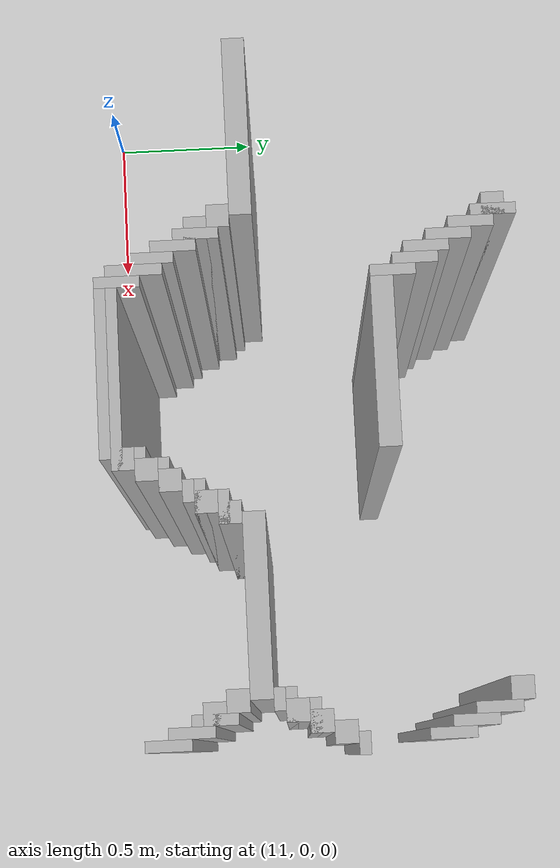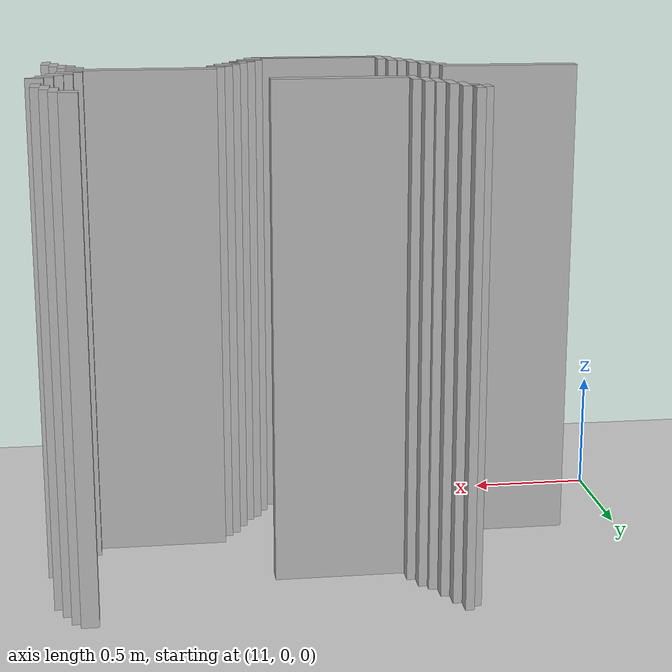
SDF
<sdf version="1.6">
 <world name="slam_world">
  <model name="ground_plane">
   <static>true</static>
   <link name="link">
    <collision name="collision">
     <geometry><plane><normal>0 0 1</normal><size>100 100</size></plane></geometry>
    </collision>
    <visual name="visual">
     <geometry><plane><normal>0 0 1</normal><size>100 100</size></plane></geometry>
     <material>
      <ambient>0.8 0.8 0.8 1</ambient>
      <diffuse>0.8 0.8 0.8 1</diffuse>
      <specular>0.8 0.8 0.8 1</specular>
     </material>
    </visual>
   </link>
  </model>
  <model name="wall_5342">
   <static>true</static>
   <pose>11.81554524361949 1.2529002320185614 1.0 0 0 0</pose>
   <link name="link">
    <collision name="collision">
     <geometry><box><size>0.03480278422273782 0.13921113689095127 2.0</size></box></geometry>
    </collision>
    <visual name="visual">
     <geometry><box><size>0.03480278422273782 0.13921113689095127 2.0</size></box></geometry>
     <material><ambient>0.5 0.5 0.5 1</ambient><diffuse>0.7 0.7 0.7 1</diffuse></material>
    </visual>
   </link>
  </model>
  <model name="wall_5352">
   <static>true</static>
   <pose>11.79814385150812 1.2529002320185614 1.0 0 0 0</pose>
   <link name="link">
    <collision name="collision">
     <geometry><box><size>0.06960556844547564 0.06960556844547564 2.0</size></box></geometry>
    </collision>
    <visual name="visual">
     <geometry><box><size>0.06960556844547564 0.06960556844547564 2.0</size></box></geometry>
     <material><ambient>0.5 0.5 0.5 1</ambient><diffuse>0.7 0.7 0.7 1</diffuse></material>
    </visual>
   </link>
  </model>
  <model name="wall_5353">
   <static>true</static>
   <pose>13.259860788863108 1.2529002320185614 1.0 0 0 0</pose>
   <link name="link">
    <collision name="collision">
     <geometry><box><size>0.06960556844547564 0.06960556844547564 2.0</size></box></geometry>
    </collision>
    <visual name="visual">
     <geometry><box><size>0.06960556844547564 0.06960556844547564 2.0</size></box></geometry>
     <material><ambient>0.5 0.5 0.5 1</ambient><diffuse>0.7 0.7 0.7 1</diffuse></material>
    </visual>
   </link>
  </model>
  <model name="wall_5363">
   <static>true</static>
   <pose>11.850348027842227 1.1832946635730859 1.0 0 0 0</pose>
   <link name="link">
    <collision name="collision">
     <geometry><box><size>0.03480278422273782 0.13921113689095127 2.0</size></box></geometry>
    </collision>
    <visual name="visual">
     <geometry><box><size>0.03480278422273782 0.13921113689095127 2.0</size></box></geometry>
     <material><ambient>0.5 0.5 0.5 1</ambient><diffuse>0.7 0.7 0.7 1</diffuse></material>
    </visual>
   </link>
  </model>
  <model name="wall_5364">
   <static>true</static>
   <pose>13.312064965197216 1.1832946635730859 1.0 0 0 0</pose>
   <link name="link">
    <collision name="collision">
     <geometry><box><size>0.03480278422273782 0.13921113689095127 2.0</size></box></geometry>
    </collision>
    <visual name="visual">
     <geometry><box><size>0.03480278422273782 0.13921113689095127 2.0</size></box></geometry>
     <material><ambient>0.5 0.5 0.5 1</ambient><diffuse>0.7 0.7 0.7 1</diffuse></material>
    </visual>
   </link>
  </model>
  <model name="wall_5382">
   <static>true</static>
   <pose>11.885150812064964 1.1136890951276102 1.0 0 0 0</pose>
   <link name="link">
    <collision name="collision">
     <geometry><box><size>0.03480278422273782 0.13921113689095127 2.0</size></box></geometry>
    </collision>
    <visual name="visual">
     <geometry><box><size>0.03480278422273782 0.13921113689095127 2.0</size></box></geometry>
     <material><ambient>0.5 0.5 0.5 1</ambient><diffuse>0.7 0.7 0.7 1</diffuse></material>
    </visual>
   </link>
  </model>
  <model name="wall_5383">
   <static>true</static>
   <pose>13.346867749419953 1.1136890951276102 1.0 0 0 0</pose>
   <link name="link">
    <collision name="collision">
     <geometry><box><size>0.03480278422273782 0.13921113689095127 2.0</size></box></geometry>
    </collision>
    <visual name="visual">
     <geometry><box><size>0.03480278422273782 0.13921113689095127 2.0</size></box></geometry>
     <material><ambient>0.5 0.5 0.5 1</ambient><diffuse>0.7 0.7 0.7 1</diffuse></material>
    </visual>
   </link>
  </model>
  <model name="wall_5393">
   <static>true</static>
   <pose>11.919953596287703 1.0440835266821344 1.0 0 0 0</pose>
   <link name="link">
    <collision name="collision">
     <geometry><box><size>0.03480278422273782 0.13921113689095127 2.0</size></box></geometry>
    </collision>
    <visual name="visual">
     <geometry><box><size>0.03480278422273782 0.13921113689095127 2.0</size></box></geometry>
     <material><ambient>0.5 0.5 0.5 1</ambient><diffuse>0.7 0.7 0.7 1</diffuse></material>
    </visual>
   </link>
  </model>
  <model name="wall_5394">
   <static>true</static>
   <pose>13.38167053364269 1.0440835266821344 1.0 0 0 0</pose>
   <link name="link">
    <collision name="collision">
     <geometry><box><size>0.03480278422273782 0.13921113689095127 2.0</size></box></geometry>
    </collision>
    <visual name="visual">
     <geometry><box><size>0.03480278422273782 0.13921113689095127 2.0</size></box></geometry>
     <material><ambient>0.5 0.5 0.5 1</ambient><diffuse>0.7 0.7 0.7 1</diffuse></material>
    </visual>
   </link>
  </model>
  <model name="wall_5404">
   <static>true</static>
   <pose>11.95475638051044 1.0092807424593968 1.0 0 0 0</pose>
   <link name="link">
    <collision name="collision">
     <geometry><box><size>0.03480278422273782 0.13921113689095127 2.0</size></box></geometry>
    </collision>
    <visual name="visual">
     <geometry><box><size>0.03480278422273782 0.13921113689095127 2.0</size></box></geometry>
     <material><ambient>0.5 0.5 0.5 1</ambient><diffuse>0.7 0.7 0.7 1</diffuse></material>
    </visual>
   </link>
  </model>
  <model name="wall_5420">
   <static>true</static>
   <pose>11.989559164733178 0.9396751740139211 1.0 0 0 0</pose>
   <link name="link">
    <collision name="collision">
     <geometry><box><size>0.03480278422273782 0.13921113689095127 2.0</size></box></geometry>
    </collision>
    <visual name="visual">
     <geometry><box><size>0.03480278422273782 0.13921113689095127 2.0</size></box></geometry>
     <material><ambient>0.5 0.5 0.5 1</ambient><diffuse>0.7 0.7 0.7 1</diffuse></material>
    </visual>
   </link>
  </model>
  <model name="wall_5440">
   <static>true</static>
   <pose>12.267981438515081 0.9048723897911832 1.0 0 0 0</pose>
   <link name="link">
    <collision name="collision">
     <geometry><box><size>0.5220417633410672 0.06960556844547564 2.0</size></box></geometry>
    </collision>
    <visual name="visual">
     <geometry><box><size>0.5220417633410672 0.06960556844547564 2.0</size></box></geometry>
     <material><ambient>0.5 0.5 0.5 1</ambient><diffuse>0.7 0.7 0.7 1</diffuse></material>
    </visual>
   </link>
  </model>
  <model name="wall_5478">
   <static>true</static>
   <pose>13.39907192575406 0.7830626450116009 1.0 0 0 0</pose>
   <link name="link">
    <collision name="collision">
     <geometry><box><size>0.06960556844547564 0.03480278422273782 2.0</size></box></geometry>
    </collision>
    <visual name="visual">
     <geometry><box><size>0.06960556844547564 0.03480278422273782 2.0</size></box></geometry>
     <material><ambient>0.5 0.5 0.5 1</ambient><diffuse>0.7 0.7 0.7 1</diffuse></material>
    </visual>
   </link>
  </model>
  <model name="wall_5488">
   <static>true</static>
   <pose>13.364269141531322 0.7308584686774942 1.0 0 0 0</pose>
   <link name="link">
    <collision name="collision">
     <geometry><box><size>0.06960556844547564 0.06960556844547564 2.0</size></box></geometry>
    </collision>
    <visual name="visual">
     <geometry><box><size>0.06960556844547564 0.06960556844547564 2.0</size></box></geometry>
     <material><ambient>0.5 0.5 0.5 1</ambient><diffuse>0.7 0.7 0.7 1</diffuse></material>
    </visual>
   </link>
  </model>
  <model name="wall_5498">
   <static>true</static>
   <pose>13.329466357308585 0.6612529002320185 1.0 0 0 0</pose>
   <link name="link">
    <collision name="collision">
     <geometry><box><size>0.06960556844547564 0.06960556844547564 2.0</size></box></geometry>
    </collision>
    <visual name="visual">
     <geometry><box><size>0.06960556844547564 0.06960556844547564 2.0</size></box></geometry>
     <material><ambient>0.5 0.5 0.5 1</ambient><diffuse>0.7 0.7 0.7 1</diffuse></material>
    </visual>
   </link>
  </model>
  <model name="wall_5508">
   <static>true</static>
   <pose>13.312064965197216 0.6438515081206496 1.0 0 0 0</pose>
   <link name="link">
    <collision name="collision">
     <geometry><box><size>0.10440835266821345 0.03480278422273782 2.0</size></box></geometry>
    </collision>
    <visual name="visual">
     <geometry><box><size>0.10440835266821345 0.03480278422273782 2.0</size></box></geometry>
     <material><ambient>0.5 0.5 0.5 1</ambient><diffuse>0.7 0.7 0.7 1</diffuse></material>
    </visual>
   </link>
  </model>
  <model name="wall_5514">
   <static>true</static>
   <pose>13.294663573085847 0.5916473317865429 1.0 0 0 0</pose>
   <link name="link">
    <collision name="collision">
     <geometry><box><size>0.06960556844547564 0.06960556844547564 2.0</size></box></geometry>
    </collision>
    <visual name="visual">
     <geometry><box><size>0.06960556844547564 0.06960556844547564 2.0</size></box></geometry>
     <material><ambient>0.5 0.5 0.5 1</ambient><diffuse>0.7 0.7 0.7 1</diffuse></material>
    </visual>
   </link>
  </model>
  <model name="wall_5524">
   <static>true</static>
   <pose>13.277262180974477 0.574245939675174 1.0 0 0 0</pose>
   <link name="link">
    <collision name="collision">
     <geometry><box><size>0.10440835266821345 0.03480278422273782 2.0</size></box></geometry>
    </collision>
    <visual name="visual">
     <geometry><box><size>0.10440835266821345 0.03480278422273782 2.0</size></box></geometry>
     <material><ambient>0.5 0.5 0.5 1</ambient><diffuse>0.7 0.7 0.7 1</diffuse></material>
    </visual>
   </link>
  </model>
  <model name="wall_5530">
   <static>true</static>
   <pose>13.259860788863108 0.5394431554524362 1.0 0 0 0</pose>
   <link name="link">
    <collision name="collision">
     <geometry><box><size>0.06960556844547564 0.03480278422273782 2.0</size></box></geometry>
    </collision>
    <visual name="visual">
     <geometry><box><size>0.06960556844547564 0.03480278422273782 2.0</size></box></geometry>
     <material><ambient>0.5 0.5 0.5 1</ambient><diffuse>0.7 0.7 0.7 1</diffuse></material>
    </visual>
   </link>
  </model>
  <model name="wall_5540">
   <static>true</static>
   <pose>11.519721577726218 0.4872389791183295 1.0 0 0 0</pose>
   <link name="link">
    <collision name="collision">
     <geometry><box><size>0.5568445475638051 0.06960556844547564 2.0</size></box></geometry>
    </collision>
    <visual name="visual">
     <geometry><box><size>0.5568445475638051 0.06960556844547564 2.0</size></box></geometry>
     <material><ambient>0.5 0.5 0.5 1</ambient><diffuse>0.7 0.7 0.7 1</diffuse></material>
    </visual>
   </link>
  </model>
  <model name="wall_5541">
   <static>true</static>
   <pose>12.981438515081207 0.4872389791183295 1.0 0 0 0</pose>
   <link name="link">
    <collision name="collision">
     <geometry><box><size>0.5568445475638051 0.06960556844547564 2.0</size></box></geometry>
    </collision>
    <visual name="visual">
     <geometry><box><size>0.5568445475638051 0.06960556844547564 2.0</size></box></geometry>
     <material><ambient>0.5 0.5 0.5 1</ambient><diffuse>0.7 0.7 0.7 1</diffuse></material>
    </visual>
   </link>
  </model>
  <model name="wall_5559">
   <static>true</static>
   <pose>11.79814385150812 0.4176334106728538 1.0 0 0 0</pose>
   <link name="link">
    <collision name="collision">
     <geometry><box><size>0.06960556844547564 0.06960556844547564 2.0</size></box></geometry>
    </collision>
    <visual name="visual">
     <geometry><box><size>0.06960556844547564 0.06960556844547564 2.0</size></box></geometry>
     <material><ambient>0.5 0.5 0.5 1</ambient><diffuse>0.7 0.7 0.7 1</diffuse></material>
    </visual>
   </link>
  </model>
  <model name="wall_5560">
   <static>true</static>
   <pose>12.703016241299304 0.4176334106728538 1.0 0 0 0</pose>
   <link name="link">
    <collision name="collision">
     <geometry><box><size>0.06960556844547564 0.06960556844547564 2.0</size></box></geometry>
    </collision>
    <visual name="visual">
     <geometry><box><size>0.06960556844547564 0.06960556844547564 2.0</size></box></geometry>
     <material><ambient>0.5 0.5 0.5 1</ambient><diffuse>0.7 0.7 0.7 1</diffuse></material>
    </visual>
   </link>
  </model>
  <model name="wall_5561">
   <static>true</static>
   <pose>13.259860788863108 0.4176334106728538 1.0 0 0 0</pose>
   <link name="link">
    <collision name="collision">
     <geometry><box><size>0.06960556844547564 0.06960556844547564 2.0</size></box></geometry>
    </collision>
    <visual name="visual">
     <geometry><box><size>0.06960556844547564 0.06960556844547564 2.0</size></box></geometry>
     <material><ambient>0.5 0.5 0.5 1</ambient><diffuse>0.7 0.7 0.7 1</diffuse></material>
    </visual>
   </link>
  </model>
  <model name="wall_5579">
   <static>true</static>
   <pose>11.850348027842227 0.34802784222737815 1.0 0 0 0</pose>
   <link name="link">
    <collision name="collision">
     <geometry><box><size>0.03480278422273782 0.13921113689095127 2.0</size></box></geometry>
    </collision>
    <visual name="visual">
     <geometry><box><size>0.03480278422273782 0.13921113689095127 2.0</size></box></geometry>
     <material><ambient>0.5 0.5 0.5 1</ambient><diffuse>0.7 0.7 0.7 1</diffuse></material>
    </visual>
   </link>
  </model>
  <model name="wall_5580">
   <static>true</static>
   <pose>12.685614849187935 0.4002320185614849 1.0 0 0 0</pose>
   <link name="link">
    <collision name="collision">
     <geometry><box><size>0.10440835266821345 0.03480278422273782 2.0</size></box></geometry>
    </collision>
    <visual name="visual">
     <geometry><box><size>0.10440835266821345 0.03480278422273782 2.0</size></box></geometry>
     <material><ambient>0.5 0.5 0.5 1</ambient><diffuse>0.7 0.7 0.7 1</diffuse></material>
    </visual>
   </link>
  </model>
  <model name="wall_5581">
   <static>true</static>
   <pose>13.312064965197216 0.34802784222737815 1.0 0 0 0</pose>
   <link name="link">
    <collision name="collision">
     <geometry><box><size>0.03480278422273782 0.13921113689095127 2.0</size></box></geometry>
    </collision>
    <visual name="visual">
     <geometry><box><size>0.03480278422273782 0.13921113689095127 2.0</size></box></geometry>
     <material><ambient>0.5 0.5 0.5 1</ambient><diffuse>0.7 0.7 0.7 1</diffuse></material>
    </visual>
   </link>
  </model>
  <model name="wall_5599">
   <static>true</static>
   <pose>11.832946635730858 0.34802784222737815 1.0 0 0 0</pose>
   <link name="link">
    <collision name="collision">
     <geometry><box><size>0.06960556844547564 0.06960556844547564 2.0</size></box></geometry>
    </collision>
    <visual name="visual">
     <geometry><box><size>0.06960556844547564 0.06960556844547564 2.0</size></box></geometry>
     <material><ambient>0.5 0.5 0.5 1</ambient><diffuse>0.7 0.7 0.7 1</diffuse></material>
    </visual>
   </link>
  </model>
  <model name="wall_5600">
   <static>true</static>
   <pose>12.668213457076565 0.34802784222737815 1.0 0 0 0</pose>
   <link name="link">
    <collision name="collision">
     <geometry><box><size>0.06960556844547564 0.06960556844547564 2.0</size></box></geometry>
    </collision>
    <visual name="visual">
     <geometry><box><size>0.06960556844547564 0.06960556844547564 2.0</size></box></geometry>
     <material><ambient>0.5 0.5 0.5 1</ambient><diffuse>0.7 0.7 0.7 1</diffuse></material>
    </visual>
   </link>
  </model>
  <model name="wall_5601">
   <static>true</static>
   <pose>13.294663573085847 0.34802784222737815 1.0 0 0 0</pose>
   <link name="link">
    <collision name="collision">
     <geometry><box><size>0.06960556844547564 0.06960556844547564 2.0</size></box></geometry>
    </collision>
    <visual name="visual">
     <geometry><box><size>0.06960556844547564 0.06960556844547564 2.0</size></box></geometry>
     <material><ambient>0.5 0.5 0.5 1</ambient><diffuse>0.7 0.7 0.7 1</diffuse></material>
    </visual>
   </link>
  </model>
  <model name="wall_5619">
   <static>true</static>
   <pose>11.885150812064964 0.27842227378190254 1.0 0 0 0</pose>
   <link name="link">
    <collision name="collision">
     <geometry><box><size>0.03480278422273782 0.13921113689095127 2.0</size></box></geometry>
    </collision>
    <visual name="visual">
     <geometry><box><size>0.03480278422273782 0.13921113689095127 2.0</size></box></geometry>
     <material><ambient>0.5 0.5 0.5 1</ambient><diffuse>0.7 0.7 0.7 1</diffuse></material>
    </visual>
   </link>
  </model>
  <model name="wall_5620">
   <static>true</static>
   <pose>12.650812064965196 0.3306264501160093 1.0 0 0 0</pose>
   <link name="link">
    <collision name="collision">
     <geometry><box><size>0.10440835266821345 0.03480278422273782 2.0</size></box></geometry>
    </collision>
    <visual name="visual">
     <geometry><box><size>0.10440835266821345 0.03480278422273782 2.0</size></box></geometry>
     <material><ambient>0.5 0.5 0.5 1</ambient><diffuse>0.7 0.7 0.7 1</diffuse></material>
    </visual>
   </link>
  </model>
  <model name="wall_5621">
   <static>true</static>
   <pose>13.346867749419953 0.27842227378190254 1.0 0 0 0</pose>
   <link name="link">
    <collision name="collision">
     <geometry><box><size>0.03480278422273782 0.13921113689095127 2.0</size></box></geometry>
    </collision>
    <visual name="visual">
     <geometry><box><size>0.03480278422273782 0.13921113689095127 2.0</size></box></geometry>
     <material><ambient>0.5 0.5 0.5 1</ambient><diffuse>0.7 0.7 0.7 1</diffuse></material>
    </visual>
   </link>
  </model>
  <model name="wall_5631">
   <static>true</static>
   <pose>12.633410672853827 0.29582366589327147 1.0 0 0 0</pose>
   <link name="link">
    <collision name="collision">
     <geometry><box><size>0.06960556844547564 0.03480278422273782 2.0</size></box></geometry>
    </collision>
    <visual name="visual">
     <geometry><box><size>0.06960556844547564 0.03480278422273782 2.0</size></box></geometry>
     <material><ambient>0.5 0.5 0.5 1</ambient><diffuse>0.7 0.7 0.7 1</diffuse></material>
    </visual>
   </link>
  </model>
  <model name="wall_5649">
   <static>true</static>
   <pose>11.919953596287703 0.2088167053364269 1.0 0 0 0</pose>
   <link name="link">
    <collision name="collision">
     <geometry><box><size>0.03480278422273782 0.13921113689095127 2.0</size></box></geometry>
    </collision>
    <visual name="visual">
     <geometry><box><size>0.03480278422273782 0.13921113689095127 2.0</size></box></geometry>
     <material><ambient>0.5 0.5 0.5 1</ambient><diffuse>0.7 0.7 0.7 1</diffuse></material>
    </visual>
   </link>
  </model>
  <model name="wall_5650">
   <static>true</static>
   <pose>12.59860788863109 0.24361948955916474 1.0 0 0 0</pose>
   <link name="link">
    <collision name="collision">
     <geometry><box><size>0.06960556844547564 0.06960556844547564 2.0</size></box></geometry>
    </collision>
    <visual name="visual">
     <geometry><box><size>0.06960556844547564 0.06960556844547564 2.0</size></box></geometry>
     <material><ambient>0.5 0.5 0.5 1</ambient><diffuse>0.7 0.7 0.7 1</diffuse></material>
    </visual>
   </link>
  </model>
  <model name="wall_5651">
   <static>true</static>
   <pose>13.38167053364269 0.2088167053364269 1.0 0 0 0</pose>
   <link name="link">
    <collision name="collision">
     <geometry><box><size>0.03480278422273782 0.13921113689095127 2.0</size></box></geometry>
    </collision>
    <visual name="visual">
     <geometry><box><size>0.03480278422273782 0.13921113689095127 2.0</size></box></geometry>
     <material><ambient>0.5 0.5 0.5 1</ambient><diffuse>0.7 0.7 0.7 1</diffuse></material>
    </visual>
   </link>
  </model>
  <model name="wall_5669">
   <static>true</static>
   <pose>11.95475638051044 0.15661252900232017 1.0 0 0 0</pose>
   <link name="link">
    <collision name="collision">
     <geometry><box><size>0.03480278422273782 0.17401392111368907 2.0</size></box></geometry>
    </collision>
    <visual name="visual">
     <geometry><box><size>0.03480278422273782 0.17401392111368907 2.0</size></box></geometry>
     <material><ambient>0.5 0.5 0.5 1</ambient><diffuse>0.7 0.7 0.7 1</diffuse></material>
    </visual>
   </link>
  </model>
  <model name="wall_5670">
   <static>true</static>
   <pose>12.581206496519721 0.2262180974477958 1.0 0 0 0</pose>
   <link name="link">
    <collision name="collision">
     <geometry><box><size>0.10440835266821345 0.03480278422273782 2.0</size></box></geometry>
    </collision>
    <visual name="visual">
     <geometry><box><size>0.10440835266821345 0.03480278422273782 2.0</size></box></geometry>
     <material><ambient>0.5 0.5 0.5 1</ambient><diffuse>0.7 0.7 0.7 1</diffuse></material>
    </visual>
   </link>
  </model>
  <model name="wall_5681">
   <static>true</static>
   <pose>12.563805104408353 0.17401392111368907 1.0 0 0 0</pose>
   <link name="link">
    <collision name="collision">
     <geometry><box><size>0.06960556844547564 0.06960556844547564 2.0</size></box></geometry>
    </collision>
    <visual name="visual">
     <geometry><box><size>0.06960556844547564 0.06960556844547564 2.0</size></box></geometry>
     <material><ambient>0.5 0.5 0.5 1</ambient><diffuse>0.7 0.7 0.7 1</diffuse></material>
    </visual>
   </link>
  </model>
  <model name="wall_5699">
   <static>true</static>
   <pose>11.989559164733178 0.10440835266821345 1.0 0 0 0</pose>
   <link name="link">
    <collision name="collision">
     <geometry><box><size>0.03480278422273782 0.13921113689095127 2.0</size></box></geometry>
    </collision>
    <visual name="visual">
     <geometry><box><size>0.03480278422273782 0.13921113689095127 2.0</size></box></geometry>
     <material><ambient>0.5 0.5 0.5 1</ambient><diffuse>0.7 0.7 0.7 1</diffuse></material>
    </visual>
   </link>
  </model>
  <model name="wall_5700">
   <static>true</static>
   <pose>12.546403712296984 0.15661252900232017 1.0 0 0 0</pose>
   <link name="link">
    <collision name="collision">
     <geometry><box><size>0.10440835266821345 0.03480278422273782 2.0</size></box></geometry>
    </collision>
    <visual name="visual">
     <geometry><box><size>0.10440835266821345 0.03480278422273782 2.0</size></box></geometry>
     <material><ambient>0.5 0.5 0.5 1</ambient><diffuse>0.7 0.7 0.7 1</diffuse></material>
    </visual>
   </link>
  </model>
  <model name="wall_5711">
   <static>true</static>
   <pose>12.529002320185615 0.10440835266821345 1.0 0 0 0</pose>
   <link name="link">
    <collision name="collision">
     <geometry><box><size>0.06960556844547564 0.06960556844547564 2.0</size></box></geometry>
    </collision>
    <visual name="visual">
     <geometry><box><size>0.06960556844547564 0.06960556844547564 2.0</size></box></geometry>
     <material><ambient>0.5 0.5 0.5 1</ambient><diffuse>0.7 0.7 0.7 1</diffuse></material>
    </visual>
   </link>
  </model>
  <model name="wall_5722">
   <static>true</static>
   <pose>12.28538283062645 0.08700696055684454 1.0 0 0 0</pose>
   <link name="link">
    <collision name="collision">
     <geometry><box><size>0.5568445475638051 0.03480278422273782 2.0</size></box></geometry>
    </collision>
    <visual name="visual">
     <geometry><box><size>0.5568445475638051 0.03480278422273782 2.0</size></box></geometry>
     <material><ambient>0.5 0.5 0.5 1</ambient><diffuse>0.7 0.7 0.7 1</diffuse></material>
    </visual>
   </link>
  </model>
  <model name="wall_5732">
   <static>true</static>
   <pose>12.267981438515081 0.052204176334106726 1.0 0 0 0</pose>
   <link name="link">
    <collision name="collision">
     <geometry><box><size>0.5220417633410672 0.03480278422273782 2.0</size></box></geometry>
    </collision>
    <visual name="visual">
     <geometry><box><size>0.5220417633410672 0.03480278422273782 2.0</size></box></geometry>
     <material><ambient>0.5 0.5 0.5 1</ambient><diffuse>0.7 0.7 0.7 1</diffuse></material>
    </visual>
   </link>
  </model>
 </world>
</sdf>
